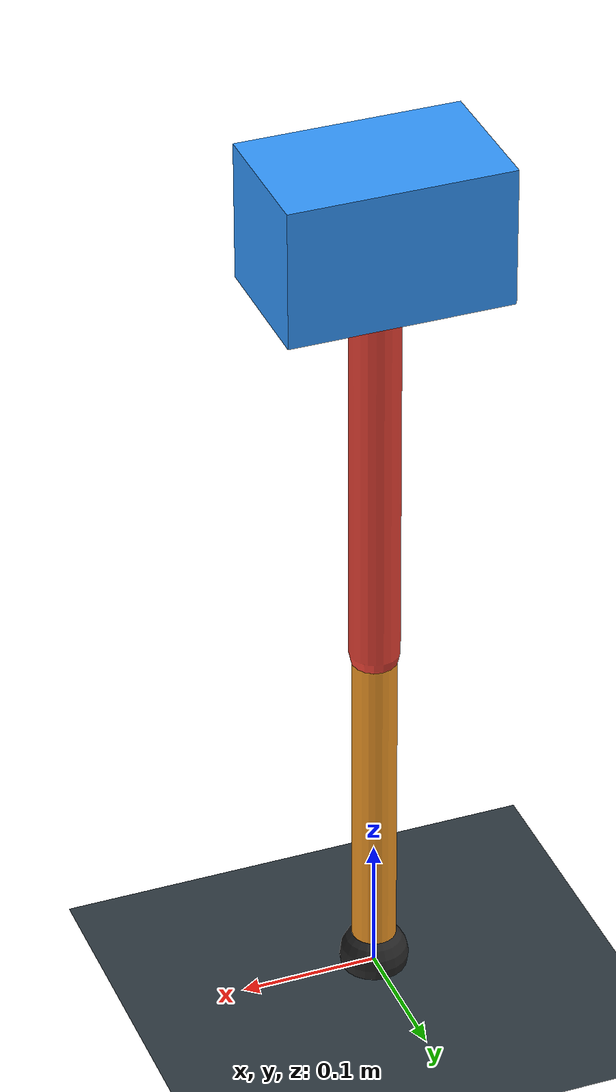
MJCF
<mujoco model="single_axis_two_bar">
  <compiler angle="radian" inertiafromgeom="true"/>
  <option timestep="0.001" integrator="implicitfast" gravity="0 0 -9.81"/>
  <default>
    <joint damping="0.08"/>
    <geom friction="1.2 0.01 0.0001" condim="3"/>
  </default>
  <worldbody>
    <geom name="floor" type="plane" size="5 5 0.1" rgba="0.18 0.22 0.25 1"/>
    <body name="carriage" pos="0 0 0.6087703230386673">
      <joint name="pole_slide" type="slide" axis="0 0 1"/>
      <geom name="payload" type="box" size="0.08 0.05 0.05" mass="3.3577786695072804" rgba="0.2 0.6 1 1"/>
      <body name="thigh" pos="0 0 0">
        <joint name="hip" type="hinge" axis="0 1 0"/>
        <geom name="thigh_link" type="capsule" fromto="0 0 0 0 0 -0.33925672125868617" size="0.018" mass="0.24172489677886796" rgba="0.9 0.25 0.2 1"/>
        <body name="shank" pos="0 0 -0.33925672125868617">
          <joint name="knee" type="hinge" axis="0 1 0"/>
          <geom name="shank_link" type="capsule" fromto="0 0 0 0 0 -0.262568354038909" size="0.016" mass="0.1870834217874099" rgba="0.95 0.6 0.15 1"/>
          <geom name="foot" type="sphere" pos="0 0 -0.262568354038909" size="0.025" mass="0.03" rgba="0.15 0.15 0.15 1"/>
          <site name="toe" pos="0 0 -0.262568354038909" size="0.008"/>
        </body>
      </body>
    </body>
  </worldbody>
  <actuator>
    <motor name="hip_motor" joint="hip" ctrlrange="-35.526230725394214 35.526230725394214"/>
    <motor name="knee_motor" joint="knee" ctrlrange="-158.64772547989577 158.64772547989577"/>
  </actuator>
</mujoco>
